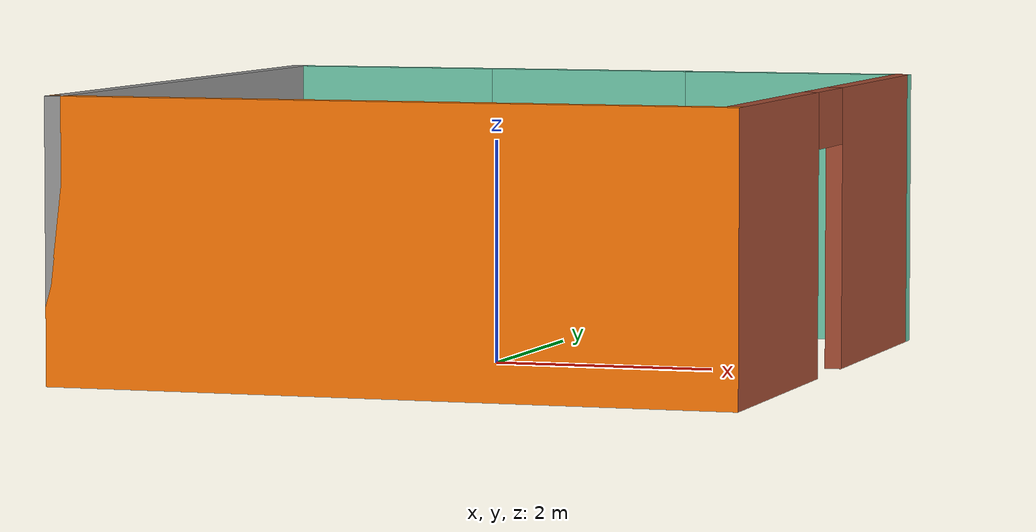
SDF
<?xml version='1.0'?>
<sdf version='1.6'>
  <model name='basic-building'>
    <pose frame=''>0 0 0 0 0 0</pose>

    <link name='Wall_0'>
      <pose frame=''>0 3 0 0 0 0</pose>

      <visual name='Wall_0_Visual_0'>
        <pose frame=''>-2 0 1.25 0 0 0</pose>
        <geometry>
          <box>
            <size>2.15 0.15 2.5</size>
          </box>
        </geometry>
        <material>
          <script>
            <uri>file://media/materials/scripts/gazebo.material</uri>
            <name>Gazebo/Grey</name>
          </script>
          <ambient>0.435294 0.796078 0.67451 1</ambient>
        </material>
        <meta>
          <layer>0</layer>
        </meta>
      </visual>
      <collision name='Wall_0_Collision_0'>
        <pose frame=''>-2 0 1.25 0 0 0</pose>
        <geometry>
          <box>
            <size>2.15 0.15 2.5</size>
          </box>
        </geometry>
      </collision>

      <visual name='Wall_0_Visual_1'>
        <pose frame=''>2 0 1.25 0 0 0</pose>
        <geometry>
          <box>
            <size>2.15 0.15 2.5</size>
          </box>
        </geometry>
        <material>
          <script>
            <uri>file://media/materials/scripts/gazebo.material</uri>
            <name>Gazebo/Grey</name>
          </script>
          <ambient>0.435294 0.796078 0.67451 1</ambient>
        </material>
        <meta>
          <layer>0</layer>
        </meta>
      </visual>
      <collision name='Wall_0_Collision_1'>
        <pose frame=''>2 0 1.25 0 0 0</pose>
        <geometry>
          <box>
            <size>2.15 0.15 2.5</size>
          </box>
        </geometry>
      </collision>

      <visual name='Wall_0_Visual_2'>
        <pose frame=''>0 0 0.55 0 0 0</pose>
        <geometry>
          <box>
            <size>2 0.15 1.10</size>
          </box>
        </geometry>
        <material>
          <script>
            <uri>file://media/materials/scripts/gazebo.material</uri>
            <name>Gazebo/Grey</name>
          </script>
          <ambient>0.435294 0.796078 0.67451 1</ambient>
        </material>
        <meta>
          <layer>0</layer>
        </meta>
      </visual>
      <collision name='Wall_0_Collision_2'>
        <pose frame=''>0 0 0.55 0 0 0</pose>
        <geometry>
          <box>
            <size>2 0.15 1.10</size>
          </box>
        </geometry>
      </collision>

      <visual name='Wall_0_Visual_3'>
        <pose frame=''>0 0 2.3 0 0 0</pose>
        <geometry>
          <box>
            <size>2 0.15 0.40</size>
          </box>
        </geometry>
        <material>
          <script>
            <uri>file://media/materials/scripts/gazebo.material</uri>
            <name>Gazebo/Grey</name>
          </script>
          <ambient>0.435294 0.796078 0.67451 1</ambient>
        </material>
        <meta>
          <layer>0</layer>
        </meta>
      </visual>
      <collision name='Wall_0_Collision_3'>
        <pose frame=''>0 0 2.3 0 0 0</pose>
        <geometry>
          <box>
            <size>2 0.15 0.40</size>
          </box>
        </geometry>
      </collision>

    </link>

    <!-- WALL 1 -->
    <link name='Wall_1'>
      <pose frame=''>-3 0 0 0 0 -1.5708</pose>

      <collision name='Wall_1_Collision'>
        <pose frame=''>0 0 3 0 0 0</pose>
        <geometry>
          <box>
            <size>6.15 0.15 2.5</size>
          </box>
        </geometry>
      </collision>

      <visual name='Wall_1_Visual'>
        <pose frame=''>0 0 1.25 0 0 0</pose>
        <geometry>
          <box>
            <size>6.15 0.15 2.5</size>
          </box>
        </geometry>
        <material>
          <script>
            <uri>file://media/materials/scripts/gazebo.material</uri>
            <name>Gazebo/Grey</name>
          </script>
          <ambient>1 1 1 1</ambient>
        </material>
        <meta>
          <layer>0</layer>
        </meta>
      </visual>

    </link>

    <!-- WALL 2 -->
    <link name='Wall_2'>
      <pose frame=''>0 -3 0 0 0 0</pose>

      <collision name='Wall_2_Collision'>
        <pose frame=''>0 0 1.25 0 0 0</pose>
        <geometry>
          <box>
            <size>6.15 0.15 2.5</size>
          </box>
        </geometry>
      </collision>

      <visual name='Wall_2_Visual'>
        <pose frame=''>0 0 1.25 0 0 0</pose>
        <geometry>
          <box>
            <size>6.15 0.15 2.5</size>
          </box>
        </geometry>
        <material>
          <script>
            <uri>file://media/materials/scripts/gazebo.material</uri>
            <name>Gazebo/Grey</name>
          </script>
          <ambient>0.996078 0.47451 0.0196078 1</ambient>
        </material>
        <meta>
          <layer>0</layer>
        </meta>
      </visual>

    </link>

    <!-- WALL 3 -->
    <link name='Wall_3'>
      <pose frame=''>3 0 0 0 0 1.5708</pose>

      <visual name='Wall_3_Visual_0'>
        <pose frame=''>-1.75 0 1.25 0 0 0</pose>
        <geometry>
          <box>
            <size>2.65 0.15 2.5</size>
          </box>
        </geometry>
        <material>
          <script>
            <uri>file://media/materials/scripts/gazebo.material</uri>
            <name>Gazebo/Bricks</name>
          </script>
          <ambient>1 1 1 1</ambient>
        </material>
        <meta>
          <layer>0</layer>
        </meta>
      </visual>
      <collision name='Wall_3_Collision_0'>
        <pose frame=''>-1.75 0 1.25 0 0 0</pose>
        <geometry>
          <box>
            <size>2.65 0.15 2.5</size>
          </box>
        </geometry>
      </collision>

      <visual name='Wall_3_Visual_1'>
        <pose frame=''>1.75 0 1.25 0 0 0</pose>
        <geometry>
          <box>
            <size>2.65 0.15 2.5</size>
          </box>
        </geometry>
        <material>
          <script>
            <uri>file://media/materials/scripts/gazebo.material</uri>
            <name>Gazebo/Bricks</name>
          </script>
          <ambient>1 1 1 1</ambient>
        </material>
        <meta>
          <layer>0</layer>
        </meta>
      </visual>
      <collision name='Wall_3_Collision_1'>
        <pose frame=''>1.75 0 1.25 0 0 0</pose>
        <geometry>
          <box>
            <size>2.65 0.15 2.5</size>
          </box>
        </geometry>
      </collision>

      <visual name='Wall_3_Visual_2'>
        <pose frame=''>0.015 0 2.25 0 -0 0</pose>
        <geometry>
          <box>
            <size>0.9 0.15 0.5</size>
          </box>
        </geometry>
        <material>
          <script>
            <uri>file://media/materials/scripts/gazebo.material</uri>
            <name>Gazebo/Bricks</name>
          </script>
          <ambient>1 1 1 1</ambient>
        </material>
        <meta>
          <layer>0</layer>
        </meta>
      </visual>
      <collision name='Wall_3_Collision_2'>
        <geometry>
          <box>
            <size>0.9 0.15 0.5</size>
          </box>
        </geometry>
        <pose frame=''>0.015 0 2.25 0 -0 0</pose>
      </collision>

    </link>

    <static>1</static>
  </model>
</sdf>
